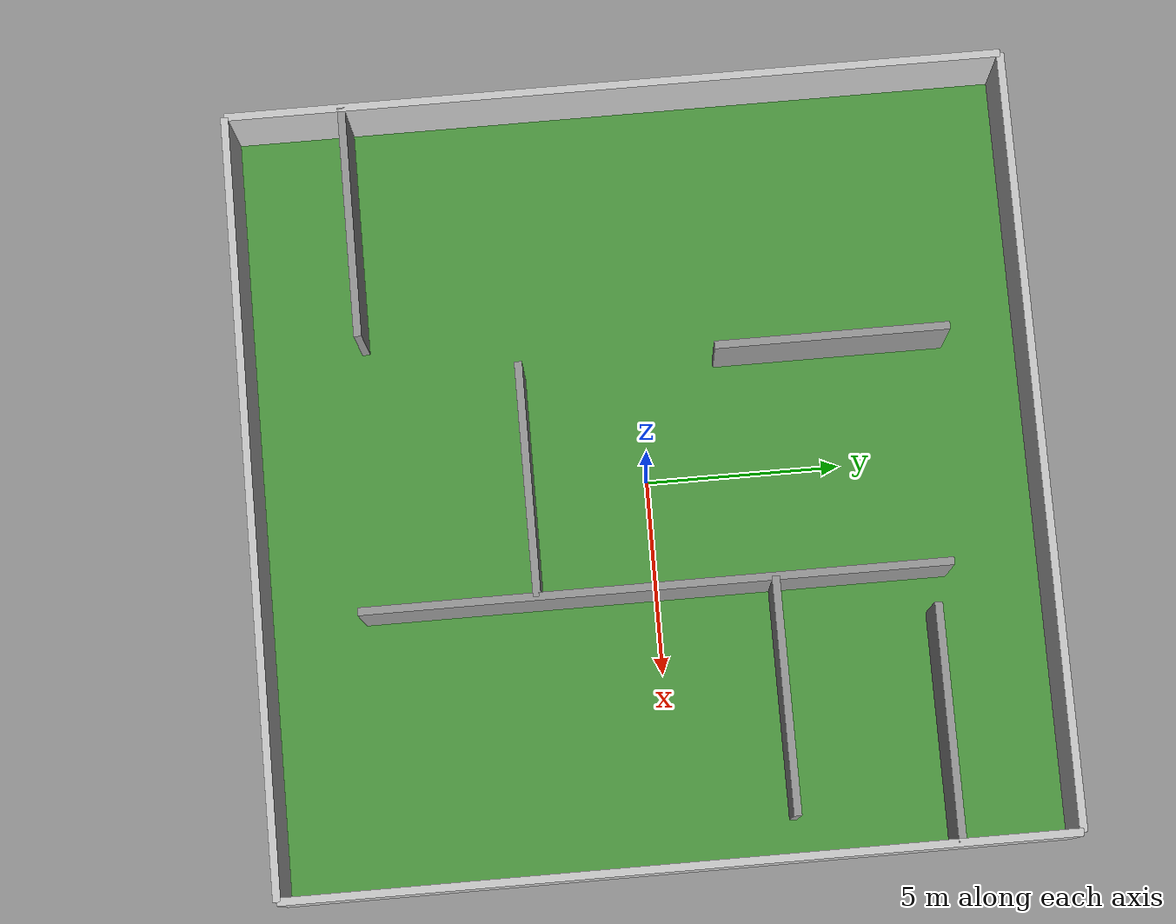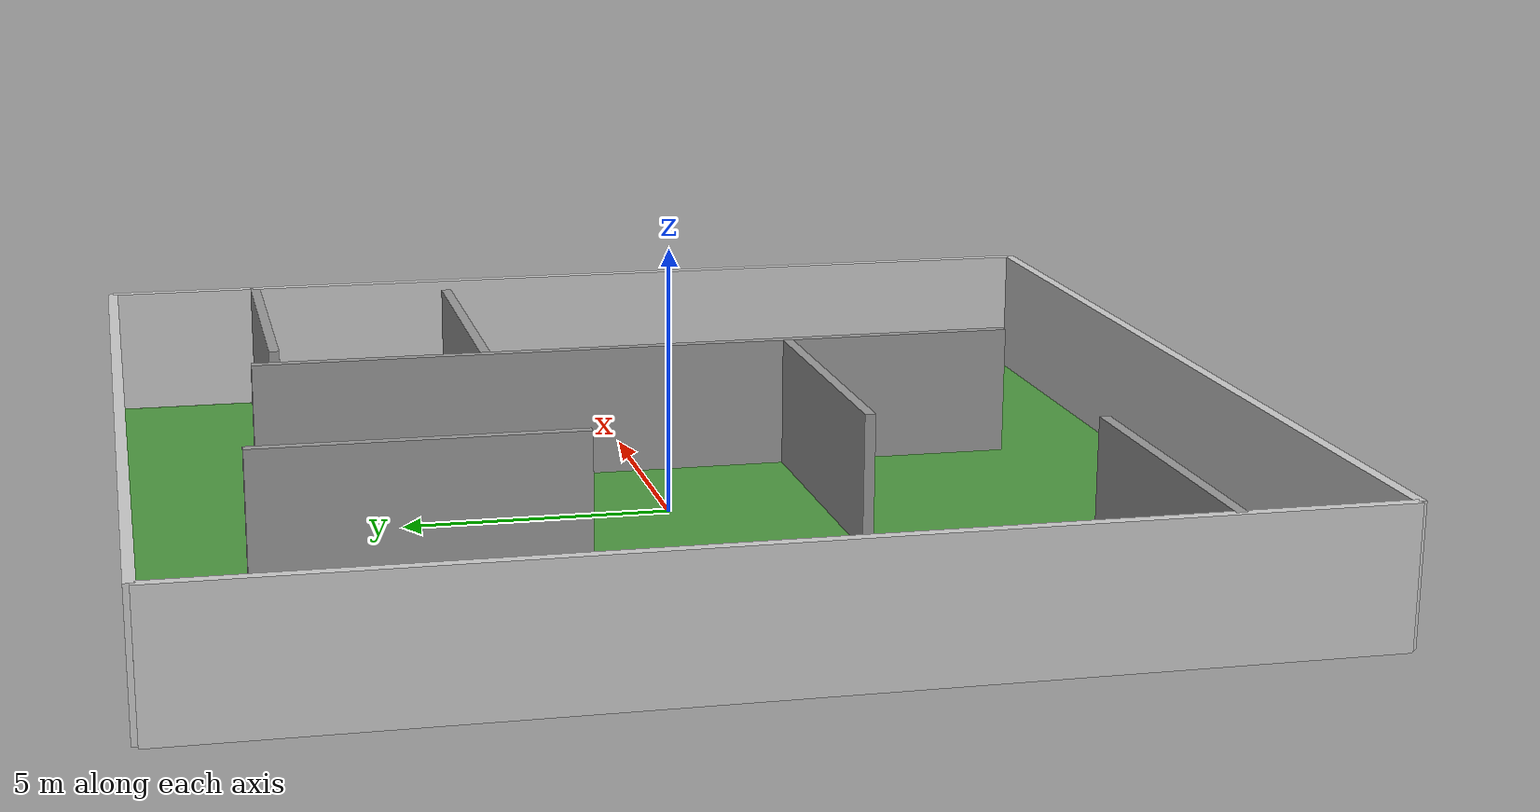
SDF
<?xml version="1.0" ?>
<sdf version="1.6">
  <world name="maze_world_b">
    <model name="maze_b">
      <static>true</static>

      <!-- Floor -->
      <link name="floor">
        <collision name="floor_collision">
          <geometry>
            <plane>
              <normal>0 0 1</normal>
              <size>20 20</size>
            </plane>
          </geometry>
        </collision>
        <visual name="floor_visual">
          <geometry>
            <plane>
              <normal>0 0 1</normal>
              <size>20 20</size>
            </plane>
          </geometry>
          <material>
            <script>
              <uri>file://media/materials/scripts/gazebo.material</uri>
              <name>Gazebo/Grass</name>
            </script>
          </material>
        </visual>
      </link>

      <!-- Walls -->
      <link name="walls">
        <!-- Outer Walls -->
        <collision name="north_wall_collision">
          <geometry>
            <box>
              <size>20 0.2 2.5</size>
            </box>
          </geometry>
          <pose>0 10 1.25 0 0 0</pose>
        </collision>
        <visual name="north_wall_visual">
          <geometry>
            <box>
              <size>20 0.2 2.5</size>
            </box>
          </geometry>
          <pose>0 10 1.25 0 0 0</pose>
          <material>
            <ambient>0.8 0.8 0.8 1</ambient>
          </material>
        </visual>

        <collision name="south_wall_collision">
          <geometry>
            <box>
              <size>20 0.2 2.5</size>
            </box>
          </geometry>
          <pose>0 -10 1.25 0 0 0</pose>
        </collision>
        <visual name="south_wall_visual">
          <geometry>
            <box>
              <size>20 0.2 2.5</size>
            </box>
          </geometry>
          <pose>0 -10 1.25 0 0 0</pose>
          <material>
            <ambient>0.8 0.8 0.8 1</ambient>
          </material>
        </visual>

        <collision name="east_wall_collision">
          <geometry>
            <box>
              <size>0.2 20 2.5</size>
            </box>
          </geometry>
          <pose>10 0 1.25 0 0 0</pose>
        </collision>
        <visual name="east_wall_visual">
          <geometry>
            <box>
              <size>0.2 20 2.5</size>
            </box>
          </geometry>
          <pose>10 0 1.25 0 0 0</pose>
          <material>
            <ambient>0.8 0.8 0.8 1</ambient>
          </material>
        </visual>

        <collision name="west_wall_collision">
          <geometry>
            <box>
              <size>0.2 20 2.5</size>
            </box>
          </geometry>
          <pose>-10 0 1.25 0 0 0</pose>
        </collision>
        <visual name="west_wall_visual">
          <geometry>
            <box>
              <size>0.2 20 2.5</size>
            </box>
          </geometry>
          <pose>-10 0 1.25 0 0 0</pose>
          <material>
            <ambient>0.8 0.8 0.8 1</ambient>
          </material>
        </visual>

        <!-- Internal Walls -->
        <!-- Vertical Wall -->
        <collision name="wall1_collision">
          <geometry>
            <box>
              <size>0.2 15 2.5</size>
            </box>
          </geometry>
          <pose>3 0 1.25 0 0 0</pose>
        </collision>
        <visual name="wall1_visual">
          <geometry>
            <box>
              <size>0.2 15 2.5</size>
            </box>
          </geometry>
          <pose>3 0 1.25 0 0 0</pose>
          <material>
            <ambient>0.6 0.6 0.6 1</ambient>
          </material>
        </visual>

        <!-- Horizontal Walls Creating Dead Ends -->
        <collision name="wall2_collision">
          <geometry>
            <box>
              <size>6 0.2 2.5</size>
            </box>
          </geometry>
          <pose>0 -3 1.25 0 0 0</pose>
        </collision>
        <visual name="wall2_visual">
          <geometry>
            <box>
              <size>6 0.2 2.5</size>
            </box>
          </geometry>
          <pose>0 -3 1.25 0 0 0</pose>
          <material>
            <ambient>0.6 0.6 0.6 1</ambient>
          </material>
        </visual>

        <collision name="wall3_collision">
          <geometry>
            <box>
              <size>6 0.2 2.5</size>
            </box>
          </geometry>
          <pose>6 3 1.25 0 0 0</pose>
        </collision>
        <visual name="wall3_visual">
          <geometry>
            <box>
              <size>6 0.2 2.5</size>
            </box>
          </geometry>
          <pose>6 3 1.25 0 0 0</pose>
          <material>
            <ambient>0.6 0.6 0.6 1</ambient>
          </material>
        </visual>

        <!-- More Walls to Increase Complexity -->
        <collision name="wall4_collision">
          <geometry>
            <box>
              <size>0.2 6 2.5</size>
            </box>
          </geometry>
          <pose>-3 5 1.25 0 0 0</pose>
        </collision>
        <visual name="wall4_visual">
          <geometry>
            <box>
              <size>0.2 6 2.5</size>
            </box>
          </geometry>
          <pose>-3 5 1.25 0 0 0</pose>
          <material>
            <ambient>0.6 0.6 0.6 1</ambient>
          </material>
        </visual>

        <!-- Closing Walls -->
        <!-- Entry Closing Wall -->
        <collision name="entry_closing_wall_collision">
          <geometry>
            <box>
              <size>6 0.2 2.5</size>
            </box>
          </geometry>
          <pose>-7 -7 1.25 0 0 0</pose>
        </collision>
        <visual name="entry_closing_wall_visual">
          <geometry>
            <box>
              <size>6 0.2 2.5</size>
            </box>
          </geometry>
          <pose>-7 -7 1.25 0 0 0</pose>
          <material>
            <ambient>0.6 0.6 0.6 1</ambient>
          </material>
        </visual>

        <!-- Exit Closing Wall -->
        <collision name="exit_closing_wall_collision">
          <geometry>
            <box>
              <size>6 0.2 2.5</size>
            </box>
          </geometry>
          <pose>7 7 1.25 0 0 0</pose>
        </collision>
        <visual name="exit_closing_wall_visual">
          <geometry>
            <box>
              <size>6 0.2 2.5</size>
            </box>
          </geometry>
          <pose>7 7 1.25 0 0 0</pose>
          <material>
            <ambient>0.6 0.6 0.6 1</ambient>
          </material>
        </visual>

      </link>
    </model>
  </world>
</sdf>
